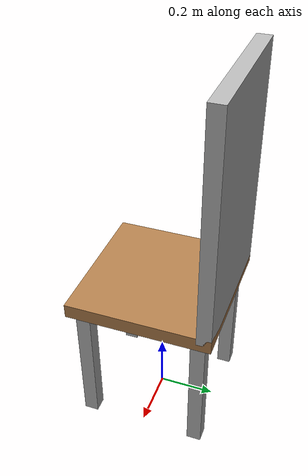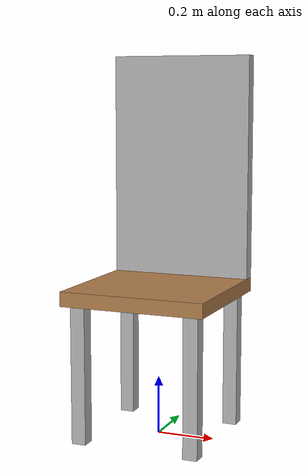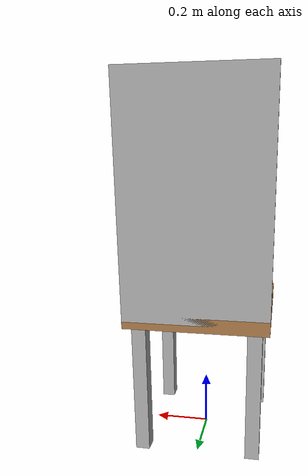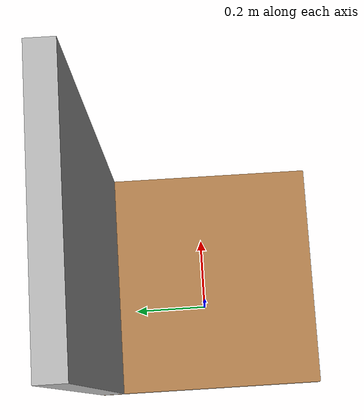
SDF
<?xml version="1.0"?>
<sdf version="1.6">
  <model name="simple_chair">
    <static>true</static>
    <link name="base">
      <!-- Seat -->
      <visual name="seat_visual">
        <geometry>
          <box><size>0.5 0.5 0.05</size></box>
        </geometry>
        <material><script><uri>file://media/materials/scripts/gazebo.material</uri><name>Gazebo/Wood</name></script></material>
      </visual>
      <collision name="seat_collision">
        <geometry>
          <box><size>0.5 0.5 0.05</size></box>
        </geometry>
      </collision>
      <pose>0 0 0.5 0 0 0</pose>
    </link>
    <!-- Legs -->
    <link name="leg1"><pose>-0.2 -0.2 0.25 0 0 0</pose><visual name="v1"><geometry><box><size>0.05 0.05 0.5</size></box></geometry></visual><collision name="c1"><geometry><box><size>0.05 0.05 0.5</size></box></geometry></collision></link>
    <link name="leg2"><pose>0.2 -0.2 0.25 0 0 0</pose><visual name="v2"><geometry><box><size>0.05 0.05 0.5</size></box></geometry></visual><collision name="c2"><geometry><box><size>0.05 0.05 0.5</size></box></geometry></collision></link>
    <link name="leg3"><pose>-0.2 0.2 0.25 0 0 0</pose><visual name="v3"><geometry><box><size>0.05 0.05 0.5</size></box></geometry></visual><collision name="c3"><geometry><box><size>0.05 0.05 0.5</size></box></geometry></collision></link>
    <link name="leg4"><pose>0.2 0.2 0.25 0 0 0</pose><visual name="v4"><geometry><box><size>0.05 0.05 0.5</size></box></geometry></visual><collision name="c4"><geometry><box><size>0.05 0.05 0.5</size></box></geometry></collision></link>
    <!-- Backrest -->
    <link name="backrest">
      <pose>0 0.225 0.9 0 0 0</pose>
      <visual name="back_visual"><geometry><box><size>0.5 0.05 0.8</size></box></geometry></visual>
      <collision name="back_collision"><geometry><box><size>0.5 0.05 0.8</size></box></geometry></collision>
    </link>
    <joint name="j_leg1" type="fixed"><parent>base</parent><child>leg1</child></joint>
    <joint name="j_leg2" type="fixed"><parent>base</parent><child>leg2</child></joint>
    <joint name="j_leg3" type="fixed"><parent>base</parent><child>leg3</child></joint>
    <joint name="j_leg4" type="fixed"><parent>base</parent><child>leg4</child></joint>
    <joint name="j_back" type="fixed"><parent>base</parent><child>backrest</child></joint>
  </model>
</sdf>
